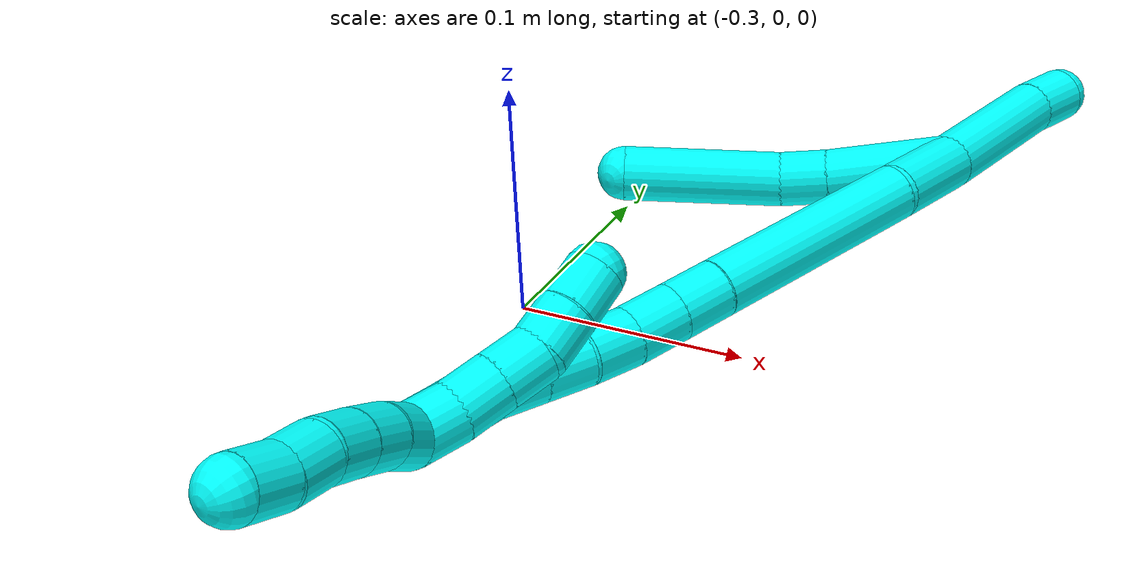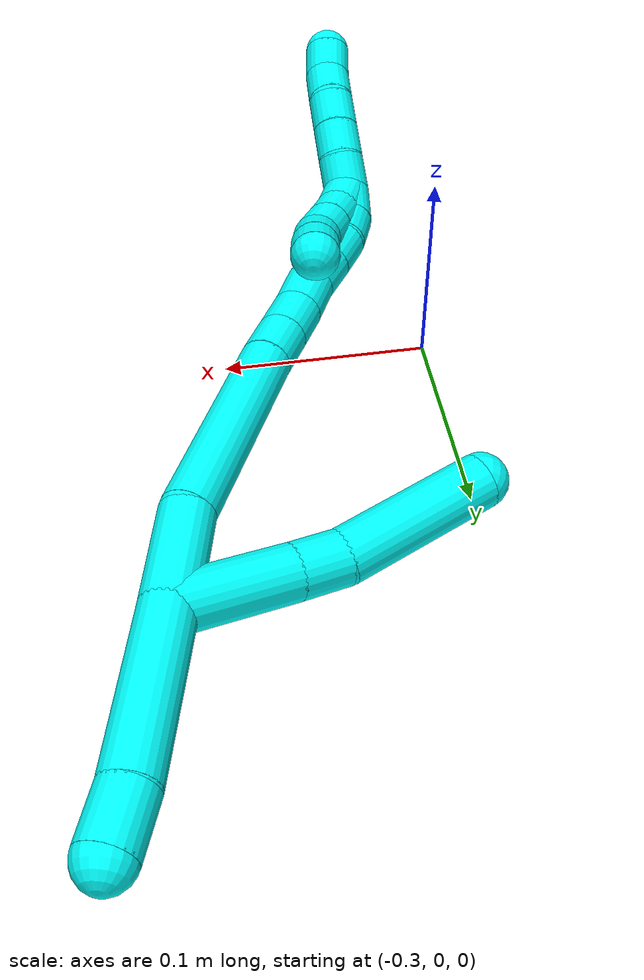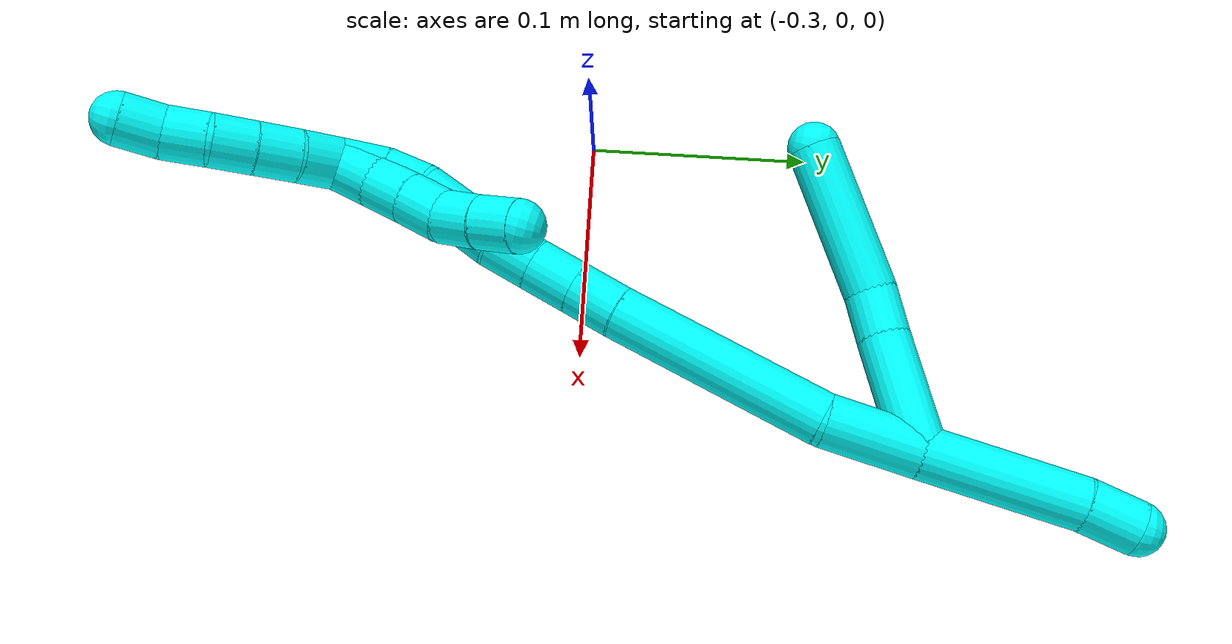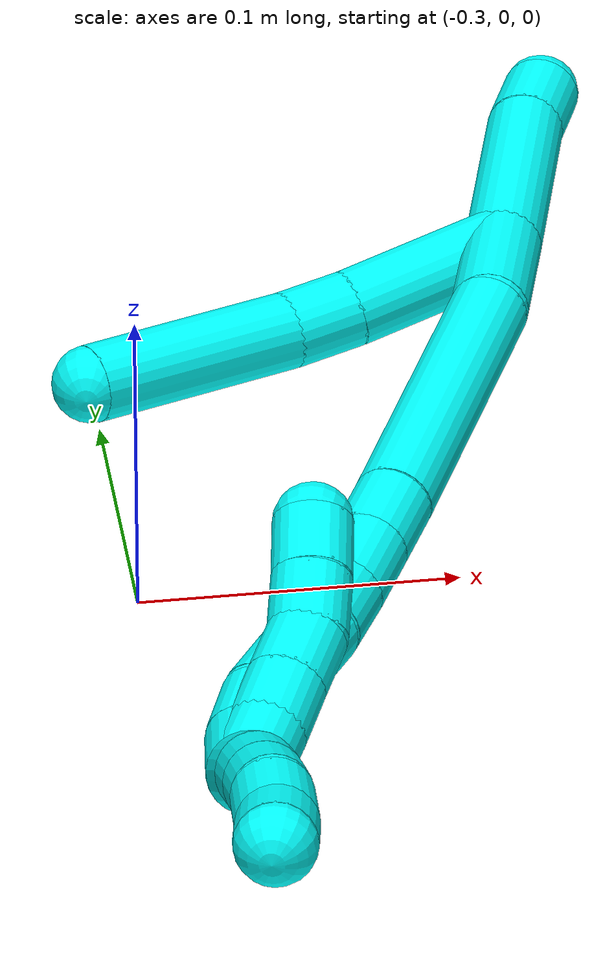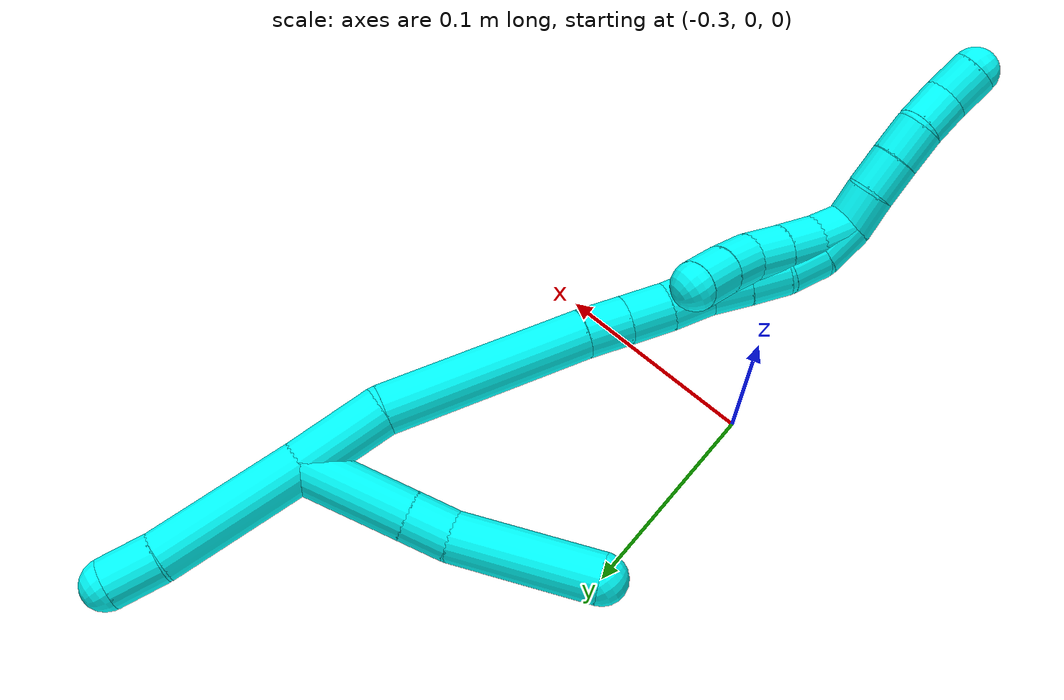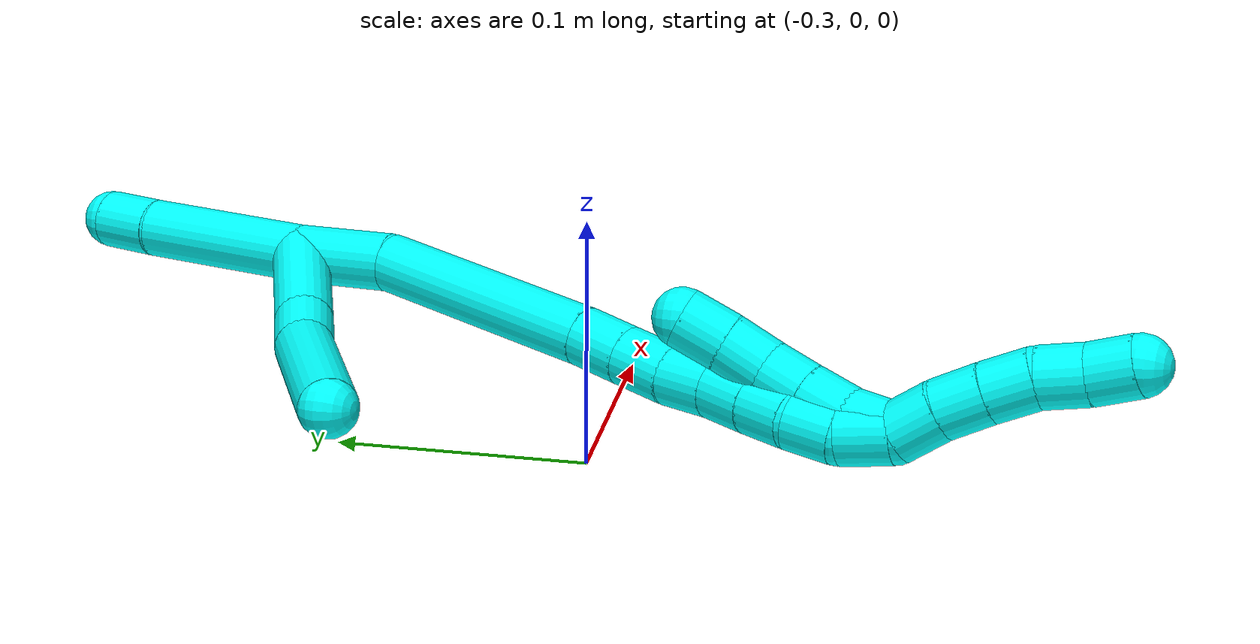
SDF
<sdf version="1.7">
 <world name="default">
  <model name="3">
   <static>0</static>
   <link name="3">
    <collision name="collision-cylinder-e_1_2_8">
     <pose>-0.016258 -0.017813 0.013162 0.934454 -0.633235 -0.327615</pose>
     <geometry><cylinder><radius>0.0125</radius><length>0.05495</length></cylinder></geometry>
     <surface>
      <friction><ode><mu>1.16</mu><mu2>1.16</mu2><slip1>0</slip1><slip2>0</slip2></ode></friction>
      <contact><ode><kp>1e+06</kp><kd>1</kd><max_vel>0</max_vel><min_depth>0.001</min_depth></ode></contact>
     </surface>
    </collision>
    <visual name="visual-cylinder-e_1_2_8">
     <pose>-0.016258 -0.017813 0.013162 0.934454 -0.633235 -0.327615</pose>
     <geometry><cylinder><radius>0.0125</radius><length>0.05495</length></cylinder></geometry>
     <material><ambient>0.003922 1 0.996078 1</ambient></material>
    </visual>
    <collision name="collision-cylinder-e_2_8_9">
     <pose>-0.039718 -0.042451 0.031685 0.904892 -0.692599 -0.347259</pose>
     <geometry><cylinder><radius>0.0125</radius><length>0.022556</length></cylinder></geometry>
     <surface>
      <friction><ode><mu>1.16</mu><mu2>1.16</mu2><slip1>0</slip1><slip2>0</slip2></ode></friction>
      <contact><ode><kp>1e+06</kp><kd>1</kd><max_vel>0</max_vel><min_depth>0.001</min_depth></ode></contact>
     </surface>
    </collision>
    <visual name="visual-cylinder-e_2_8_9">
     <pose>-0.039718 -0.042451 0.031685 0.904892 -0.692599 -0.347259</pose>
     <geometry><cylinder><radius>0.0125</radius><length>0.022556</length></cylinder></geometry>
     <material><ambient>0.003922 1 0.996078 1</ambient></material>
    </visual>
    <collision name="collision-cylinder-e_3_9_6">
     <pose>-0.071352 -0.065078 0.058662 0.631265 -0.739664 -0.251847</pose>
     <geometry><cylinder><radius>0.0125</radius><length>0.072495</length></cylinder></geometry>
     <surface>
      <friction><ode><mu>1.16</mu><mu2>1.16</mu2><slip1>0</slip1><slip2>0</slip2></ode></friction>
      <contact><ode><kp>1e+06</kp><kd>1</kd><max_vel>0</max_vel><min_depth>0.001</min_depth></ode></contact>
     </surface>
    </collision>
    <visual name="visual-cylinder-e_3_9_6">
     <pose>-0.071352 -0.065078 0.058662 0.631265 -0.739664 -0.251847</pose>
     <geometry><cylinder><radius>0.0125</radius><length>0.072495</length></cylinder></geometry>
     <material><ambient>0.003922 1 0.996078 1</ambient></material>
    </visual>
    <collision name="collision-cylinder-e_1_2_10">
     <pose>-0.00048 0.002642 -0.037348 -3.07097 -0.012822 0.359074</pose>
     <geometry><cylinder><radius>0.0125</radius><length>0.074889</length></cylinder></geometry>
     <surface>
      <friction><ode><mu>1.16</mu><mu2>1.16</mu2><slip1>0</slip1><slip2>0</slip2></ode></friction>
      <contact><ode><kp>1e+06</kp><kd>1</kd><max_vel>0</max_vel><min_depth>0.001</min_depth></ode></contact>
     </surface>
    </collision>
    <visual name="visual-cylinder-e_1_2_10">
     <pose>-0.00048 0.002642 -0.037348 -3.07097 -0.012822 0.359074</pose>
     <geometry><cylinder><radius>0.0125</radius><length>0.074889</length></cylinder></geometry>
     <material><ambient>0.003922 1 0.996078 1</ambient></material>
    </visual>
    <collision name="collision-cylinder-e_2_10_5">
     <pose>0.000226 0.006688 -0.087116 -3.02905 0.094597 -1.39769</pose>
     <geometry><cylinder><radius>0.0125</radius><length>0.025111</length></cylinder></geometry>
     <surface>
      <friction><ode><mu>1.16</mu><mu2>1.16</mu2><slip1>0</slip1><slip2>0</slip2></ode></friction>
      <contact><ode><kp>1e+06</kp><kd>1</kd><max_vel>0</max_vel><min_depth>0.001</min_depth></ode></contact>
     </surface>
    </collision>
    <visual name="visual-cylinder-e_2_10_5">
     <pose>0.000226 0.006688 -0.087116 -3.02905 0.094597 -1.39769</pose>
     <geometry><cylinder><radius>0.0125</radius><length>0.025111</length></cylinder></geometry>
     <material><ambient>0.003922 1 0.996078 1</ambient></material>
    </visual>
    <collision name="collision-cylinder-e_1_2_11">
     <pose>-0.000521 -0.000283 0.022536 0.012559 -0.02311 -0.000145</pose>
     <geometry><cylinder><radius>0.0125</radius><length>0.045087</length></cylinder></geometry>
     <surface>
      <friction><ode><mu>1.16</mu><mu2>1.16</mu2><slip1>0</slip1><slip2>0</slip2></ode></friction>
      <contact><ode><kp>1e+06</kp><kd>1</kd><max_vel>0</max_vel><min_depth>0.001</min_depth></ode></contact>
     </surface>
    </collision>
    <visual name="visual-cylinder-e_1_2_11">
     <pose>-0.000521 -0.000283 0.022536 0.012559 -0.02311 -0.000145</pose>
     <geometry><cylinder><radius>0.0125</radius><length>0.045087</length></cylinder></geometry>
     <material><ambient>0.003922 1 0.996078 1</ambient></material>
    </visual>
    <collision name="collision-cylinder-e_2_11_12">
     <pose>-0.006054 -0.013292 0.095224 0.248511 -0.096568 -0.012071</pose>
     <geometry><cylinder><radius>0.0125</radius><length>0.103967</length></cylinder></geometry>
     <surface>
      <friction><ode><mu>1.16</mu><mu2>1.16</mu2><slip1>0</slip1><slip2>0</slip2></ode></friction>
      <contact><ode><kp>1e+06</kp><kd>1</kd><max_vel>0</max_vel><min_depth>0.001</min_depth></ode></contact>
     </surface>
    </collision>
    <visual name="visual-cylinder-e_2_11_12">
     <pose>-0.006054 -0.013292 0.095224 0.248511 -0.096568 -0.012071</pose>
     <geometry><cylinder><radius>0.0125</radius><length>0.103967</length></cylinder></geometry>
     <material><ambient>0.003922 1 0.996078 1</ambient></material>
    </visual>
    <collision name="collision-cylinder-e_3_12_13">
     <pose>-0.012304 -0.029383 0.156142 0.302848 -0.109287 -0.016693</pose>
     <geometry><cylinder><radius>0.0125</radius><length>0.022695</length></cylinder></geometry>
     <surface>
      <friction><ode><mu>1.16</mu><mu2>1.16</mu2><slip1>0</slip1><slip2>0</slip2></ode></friction>
      <contact><ode><kp>1e+06</kp><kd>1</kd><max_vel>0</max_vel><min_depth>0.001</min_depth></ode></contact>
     </surface>
    </collision>
    <visual name="visual-cylinder-e_3_12_13">
     <pose>-0.012304 -0.029383 0.156142 0.302848 -0.109287 -0.016693</pose>
     <geometry><cylinder><radius>0.0125</radius><length>0.022695</length></cylinder></geometry>
     <material><ambient>0.003922 1 0.996078 1</ambient></material>
    </visual>
    <collision name="collision-cylinder-e_4_13_14">
     <pose>-0.014821 -0.036054 0.177752 0.296006 -0.112399 -0.016775</pose>
     <geometry><cylinder><radius>0.0125</radius><length>0.022816</length></cylinder></geometry>
     <surface>
      <friction><ode><mu>1.16</mu><mu2>1.16</mu2><slip1>0</slip1><slip2>0</slip2></ode></friction>
      <contact><ode><kp>1e+06</kp><kd>1</kd><max_vel>0</max_vel><min_depth>0.001</min_depth></ode></contact>
     </surface>
    </collision>
    <visual name="visual-cylinder-e_4_13_14">
     <pose>-0.014821 -0.036054 0.177752 0.296006 -0.112399 -0.016775</pose>
     <geometry><cylinder><radius>0.0125</radius><length>0.022816</length></cylinder></geometry>
     <material><ambient>0.003922 1 0.996078 1</ambient></material>
    </visual>
    <collision name="collision-cylinder-e_5_14_15">
     <pose>-0.017895 -0.041332 0.199137 0.184887 -0.165789 -0.015405</pose>
     <geometry><cylinder><radius>0.0125</radius><length>0.021748</length></cylinder></geometry>
     <surface>
      <friction><ode><mu>1.16</mu><mu2>1.16</mu2><slip1>0</slip1><slip2>0</slip2></ode></friction>
      <contact><ode><kp>1e+06</kp><kd>1</kd><max_vel>0</max_vel><min_depth>0.001</min_depth></ode></contact>
     </surface>
    </collision>
    <visual name="visual-cylinder-e_5_14_15">
     <pose>-0.017895 -0.041332 0.199137 0.184887 -0.165789 -0.015405</pose>
     <geometry><cylinder><radius>0.0125</radius><length>0.021748</length></cylinder></geometry>
     <material><ambient>0.003922 1 0.996078 1</ambient></material>
    </visual>
    <collision name="collision-cylinder-e_6_15_16">
     <pose>-0.022301 -0.046147 0.219335 0.286324 -0.253832 -0.036783</pose>
     <geometry><cylinder><radius>0.0125</radius><length>0.020796</length></cylinder></geometry>
     <surface>
      <friction><ode><mu>1.16</mu><mu2>1.16</mu2><slip1>0</slip1><slip2>0</slip2></ode></friction>
      <contact><ode><kp>1e+06</kp><kd>1</kd><max_vel>0</max_vel><min_depth>0.001</min_depth></ode></contact>
     </surface>
    </collision>
    <visual name="visual-cylinder-e_6_15_16">
     <pose>-0.022301 -0.046147 0.219335 0.286324 -0.253832 -0.036783</pose>
     <geometry><cylinder><radius>0.0125</radius><length>0.020796</length></cylinder></geometry>
     <material><ambient>0.003922 1 0.996078 1</ambient></material>
    </visual>
    <collision name="collision-cylinder-e_7_16_17">
     <pose>-0.027417 -0.051546 0.238623 0.259423 -0.246254 -0.032283</pose>
     <geometry><cylinder><radius>0.0125</radius><length>0.020553</length></cylinder></geometry>
     <surface>
      <friction><ode><mu>1.16</mu><mu2>1.16</mu2><slip1>0</slip1><slip2>0</slip2></ode></friction>
      <contact><ode><kp>1e+06</kp><kd>1</kd><max_vel>0</max_vel><min_depth>0.001</min_depth></ode></contact>
     </surface>
    </collision>
    <visual name="visual-cylinder-e_7_16_17">
     <pose>-0.027417 -0.051546 0.238623 0.259423 -0.246254 -0.032283</pose>
     <geometry><cylinder><radius>0.0125</radius><length>0.020553</length></cylinder></geometry>
     <material><ambient>0.003922 1 0.996078 1</ambient></material>
    </visual>
    <collision name="collision-cylinder-e_8_17_18">
     <pose>-0.030261 -0.056102 0.258254 0.197333 -0.033237 -0.00329</pose>
     <geometry><cylinder><radius>0.0125</radius><length>0.020405</length></cylinder></geometry>
     <surface>
      <friction><ode><mu>1.16</mu><mu2>1.16</mu2><slip1>0</slip1><slip2>0</slip2></ode></friction>
      <contact><ode><kp>1e+06</kp><kd>1</kd><max_vel>0</max_vel><min_depth>0.001</min_depth></ode></contact>
     </surface>
    </collision>
    <visual name="visual-cylinder-e_8_17_18">
     <pose>-0.030261 -0.056102 0.258254 0.197333 -0.033237 -0.00329</pose>
     <geometry><cylinder><radius>0.0125</radius><length>0.020405</length></cylinder></geometry>
     <material><ambient>0.003922 1 0.996078 1</ambient></material>
    </visual>
    <collision name="collision-cylinder-e_9_18_1">
     <pose>-0.030132 -0.056651 0.279113 -0.132704 0.042762 -0.002842</pose>
     <geometry><cylinder><radius>0.0125</radius><length>0.021932</length></cylinder></geometry>
     <surface>
      <friction><ode><mu>1.16</mu><mu2>1.16</mu2><slip1>0</slip1><slip2>0</slip2></ode></friction>
      <contact><ode><kp>1e+06</kp><kd>1</kd><max_vel>0</max_vel><min_depth>0.001</min_depth></ode></contact>
     </surface>
    </collision>
    <visual name="visual-cylinder-e_9_18_1">
     <pose>-0.030132 -0.056651 0.279113 -0.132704 0.042762 -0.002842</pose>
     <geometry><cylinder><radius>0.0125</radius><length>0.021932</length></cylinder></geometry>
     <material><ambient>0.003922 1 0.996078 1</ambient></material>
    </visual>
    <collision name="collision-cylinder-e_1_1_19">
     <pose>-0.030622 -0.04986 0.298372 -0.566454 -0.096064 0.027979</pose>
     <geometry><cylinder><radius>0.0125</radius><length>0.02</length></cylinder></geometry>
     <surface>
      <friction><ode><mu>1.16</mu><mu2>1.16</mu2><slip1>0</slip1><slip2>0</slip2></ode></friction>
      <contact><ode><kp>1e+06</kp><kd>1</kd><max_vel>0</max_vel><min_depth>0.001</min_depth></ode></contact>
     </surface>
    </collision>
    <visual name="visual-cylinder-e_1_1_19">
     <pose>-0.030622 -0.04986 0.298372 -0.566454 -0.096064 0.027979</pose>
     <geometry><cylinder><radius>0.0125</radius><length>0.02</length></cylinder></geometry>
     <material><ambient>0.003922 1 0.996078 1</ambient></material>
    </visual>
    <collision name="collision-cylinder-e_2_19_20">
     <pose>-0.031976 -0.040284 0.315822 -0.437599 -0.039453 0.008774</pose>
     <geometry><cylinder><radius>0.0125</radius><length>0.02</length></cylinder></geometry>
     <surface>
      <friction><ode><mu>1.16</mu><mu2>1.16</mu2><slip1>0</slip1><slip2>0</slip2></ode></friction>
      <contact><ode><kp>1e+06</kp><kd>1</kd><max_vel>0</max_vel><min_depth>0.001</min_depth></ode></contact>
     </surface>
    </collision>
    <visual name="visual-cylinder-e_2_19_20">
     <pose>-0.031976 -0.040284 0.315822 -0.437599 -0.039453 0.008774</pose>
     <geometry><cylinder><radius>0.0125</radius><length>0.02</length></cylinder></geometry>
     <material><ambient>0.003922 1 0.996078 1</ambient></material>
    </visual>
    <collision name="collision-cylinder-e_3_20_21">
     <pose>-0.032579 -0.032191 0.334096 -0.396176 -0.020932 0.004202</pose>
     <geometry><cylinder><radius>0.0125</radius><length>0.02</length></cylinder></geometry>
     <surface>
      <friction><ode><mu>1.16</mu><mu2>1.16</mu2><slip1>0</slip1><slip2>0</slip2></ode></friction>
      <contact><ode><kp>1e+06</kp><kd>1</kd><max_vel>0</max_vel><min_depth>0.001</min_depth></ode></contact>
     </surface>
    </collision>
    <visual name="visual-cylinder-e_3_20_21">
     <pose>-0.032579 -0.032191 0.334096 -0.396176 -0.020932 0.004202</pose>
     <geometry><cylinder><radius>0.0125</radius><length>0.02</length></cylinder></geometry>
     <material><ambient>0.003922 1 0.996078 1</ambient></material>
    </visual>
    <collision name="collision-cylinder-e_4_21_22">
     <pose>-0.032039 -0.026545 0.353129 -0.180299 0.075009 -0.006784</pose>
     <geometry><cylinder><radius>0.0125</radius><length>0.02</length></cylinder></geometry>
     <surface>
      <friction><ode><mu>1.16</mu><mu2>1.16</mu2><slip1>0</slip1><slip2>0</slip2></ode></friction>
      <contact><ode><kp>1e+06</kp><kd>1</kd><max_vel>0</max_vel><min_depth>0.001</min_depth></ode></contact>
     </surface>
    </collision>
    <visual name="visual-cylinder-e_4_21_22">
     <pose>-0.032039 -0.026545 0.353129 -0.180299 0.075009 -0.006784</pose>
     <geometry><cylinder><radius>0.0125</radius><length>0.02</length></cylinder></geometry>
     <material><ambient>0.003922 1 0.996078 1</ambient></material>
    </visual>
    <collision name="collision-cylinder-e_5_22_4">
     <pose>-0.03221 -0.022249 0.372576 -0.254566 -0.092095 0.011794</pose>
     <geometry><cylinder><radius>0.0125</radius><length>0.02</length></cylinder></geometry>
     <surface>
      <friction><ode><mu>1.16</mu><mu2>1.16</mu2><slip1>0</slip1><slip2>0</slip2></ode></friction>
      <contact><ode><kp>1e+06</kp><kd>1</kd><max_vel>0</max_vel><min_depth>0.001</min_depth></ode></contact>
     </surface>
    </collision>
    <visual name="visual-cylinder-e_5_22_4">
     <pose>-0.03221 -0.022249 0.372576 -0.254566 -0.092095 0.011794</pose>
     <geometry><cylinder><radius>0.0125</radius><length>0.02</length></cylinder></geometry>
     <material><ambient>0.003922 1 0.996078 1</ambient></material>
    </visual>
    <collision name="collision-cylinder-e_1_1_23">
     <pose>-0.028862 -0.053046 0.28024 -2.92366 0.080137 -0.702523</pose>
     <geometry><cylinder><radius>0.0125</radius><length>0.02</length></cylinder></geometry>
     <surface>
      <friction><ode><mu>1.16</mu><mu2>1.16</mu2><slip1>0</slip1><slip2>0</slip2></ode></friction>
      <contact><ode><kp>1e+06</kp><kd>1</kd><max_vel>0</max_vel><min_depth>0.001</min_depth></ode></contact>
     </surface>
    </collision>
    <visual name="visual-cylinder-e_1_1_23">
     <pose>-0.028862 -0.053046 0.28024 -2.92366 0.080137 -0.702523</pose>
     <geometry><cylinder><radius>0.0125</radius><length>0.02</length></cylinder></geometry>
     <material><ambient>0.003922 1 0.996078 1</ambient></material>
    </visual>
    <collision name="collision-cylinder-e_2_23_24">
     <pose>-0.027983 -0.047072 0.261267 -2.74967 0.00791 -0.03984</pose>
     <geometry><cylinder><radius>0.0125</radius><length>0.02</length></cylinder></geometry>
     <surface>
      <friction><ode><mu>1.16</mu><mu2>1.16</mu2><slip1>0</slip1><slip2>0</slip2></ode></friction>
      <contact><ode><kp>1e+06</kp><kd>1</kd><max_vel>0</max_vel><min_depth>0.001</min_depth></ode></contact>
     </surface>
    </collision>
    <visual name="visual-cylinder-e_2_23_24">
     <pose>-0.027983 -0.047072 0.261267 -2.74967 0.00791 -0.03984</pose>
     <geometry><cylinder><radius>0.0125</radius><length>0.02</length></cylinder></geometry>
     <material><ambient>0.003922 1 0.996078 1</ambient></material>
    </visual>
    <collision name="collision-cylinder-e_3_24_25">
     <pose>-0.027719 -0.039229 0.242872 -2.72748 0.018451 -0.087779</pose>
     <geometry><cylinder><radius>0.0125</radius><length>0.02</length></cylinder></geometry>
     <surface>
      <friction><ode><mu>1.16</mu><mu2>1.16</mu2><slip1>0</slip1><slip2>0</slip2></ode></friction>
      <contact><ode><kp>1e+06</kp><kd>1</kd><max_vel>0</max_vel><min_depth>0.001</min_depth></ode></contact>
     </surface>
    </collision>
    <visual name="visual-cylinder-e_3_24_25">
     <pose>-0.027719 -0.039229 0.242872 -2.72748 0.018451 -0.087779</pose>
     <geometry><cylinder><radius>0.0125</radius><length>0.02</length></cylinder></geometry>
     <material><ambient>0.003922 1 0.996078 1</ambient></material>
    </visual>
    <collision name="collision-cylinder-e_4_25_26">
     <pose>-0.03041 -0.031103 0.225065 -2.69887 -0.291704 1.15657</pose>
     <geometry><cylinder><radius>0.0125</radius><length>0.02</length></cylinder></geometry>
     <surface>
      <friction><ode><mu>1.16</mu><mu2>1.16</mu2><slip1>0</slip1><slip2>0</slip2></ode></friction>
      <contact><ode><kp>1e+06</kp><kd>1</kd><max_vel>0</max_vel><min_depth>0.001</min_depth></ode></contact>
     </surface>
    </collision>
    <visual name="visual-cylinder-e_4_25_26">
     <pose>-0.03041 -0.031103 0.225065 -2.69887 -0.291704 1.15657</pose>
     <geometry><cylinder><radius>0.0125</radius><length>0.02</length></cylinder></geometry>
     <material><ambient>0.003922 1 0.996078 1</ambient></material>
    </visual>
    <collision name="collision-cylinder-e_5_26_3">
     <pose>-0.036388 -0.023451 0.207591 -2.75898 -0.315407 1.37495</pose>
     <geometry><cylinder><radius>0.0125</radius><length>0.02</length></cylinder></geometry>
     <surface>
      <friction><ode><mu>1.16</mu><mu2>1.16</mu2><slip1>0</slip1><slip2>0</slip2></ode></friction>
      <contact><ode><kp>1e+06</kp><kd>1</kd><max_vel>0</max_vel><min_depth>0.001</min_depth></ode></contact>
     </surface>
    </collision>
    <visual name="visual-cylinder-e_5_26_3">
     <pose>-0.036388 -0.023451 0.207591 -2.75898 -0.315407 1.37495</pose>
     <geometry><cylinder><radius>0.0125</radius><length>0.02</length></cylinder></geometry>
     <material><ambient>0.003922 1 0.996078 1</ambient></material>
    </visual>
    <collision name="collision-sphere-3">
     <pose>-0.03949 -0.019901 0.198772 0 -0 0</pose>
     <geometry><sphere><radius>0.0125</radius></sphere></geometry>
     <surface>
      <friction><ode><mu>1.16</mu><mu2>1.16</mu2><slip1>0</slip1><slip2>0</slip2></ode></friction>
      <contact><ode><kp>1e+06</kp><kd>1</kd><max_vel>0</max_vel><min_depth>0.001</min_depth></ode></contact>
     </surface>
    </collision>
    <visual name="visual-sphere-3">
     <pose>-0.03949 -0.019901 0.198772 0 -0 0</pose>
     <geometry><sphere><radius>0.0125</radius></sphere></geometry>
     <material><ambient>0.003922 1 0.996078 1</ambient></material>
    </visual>
    <collision name="collision-sphere-26">
     <pose>-0.033286 -0.027 0.216411 0 -0 0</pose>
     <geometry><sphere><radius>0.0125</radius></sphere></geometry>
     <surface>
      <friction><ode><mu>1.16</mu><mu2>1.16</mu2><slip1>0</slip1><slip2>0</slip2></ode></friction>
      <contact><ode><kp>1e+06</kp><kd>1</kd><max_vel>0</max_vel><min_depth>0.001</min_depth></ode></contact>
     </surface>
    </collision>
    <visual name="visual-sphere-26">
     <pose>-0.033286 -0.027 0.216411 0 -0 0</pose>
     <geometry><sphere><radius>0.0125</radius></sphere></geometry>
     <material><ambient>0.003922 1 0.996078 1</ambient></material>
    </visual>
    <collision name="collision-sphere-25">
     <pose>-0.027535 -0.035206 0.233719 0 -0 0</pose>
     <geometry><sphere><radius>0.0125</radius></sphere></geometry>
     <surface>
      <friction><ode><mu>1.16</mu><mu2>1.16</mu2><slip1>0</slip1><slip2>0</slip2></ode></friction>
      <contact><ode><kp>1e+06</kp><kd>1</kd><max_vel>0</max_vel><min_depth>0.001</min_depth></ode></contact>
     </surface>
    </collision>
    <visual name="visual-sphere-25">
     <pose>-0.027535 -0.035206 0.233719 0 -0 0</pose>
     <geometry><sphere><radius>0.0125</radius></sphere></geometry>
     <material><ambient>0.003922 1 0.996078 1</ambient></material>
    </visual>
    <collision name="collision-sphere-24">
     <pose>-0.027904 -0.043252 0.252025 0 -0 0</pose>
     <geometry><sphere><radius>0.0125</radius></sphere></geometry>
     <surface>
      <friction><ode><mu>1.16</mu><mu2>1.16</mu2><slip1>0</slip1><slip2>0</slip2></ode></friction>
      <contact><ode><kp>1e+06</kp><kd>1</kd><max_vel>0</max_vel><min_depth>0.001</min_depth></ode></contact>
     </surface>
    </collision>
    <visual name="visual-sphere-24">
     <pose>-0.027904 -0.043252 0.252025 0 -0 0</pose>
     <geometry><sphere><radius>0.0125</radius></sphere></geometry>
     <material><ambient>0.003922 1 0.996078 1</ambient></material>
    </visual>
    <collision name="collision-sphere-23">
     <pose>-0.028062 -0.050891 0.270508 0 -0 0</pose>
     <geometry><sphere><radius>0.0125</radius></sphere></geometry>
     <surface>
      <friction><ode><mu>1.16</mu><mu2>1.16</mu2><slip1>0</slip1><slip2>0</slip2></ode></friction>
      <contact><ode><kp>1e+06</kp><kd>1</kd><max_vel>0</max_vel><min_depth>0.001</min_depth></ode></contact>
     </surface>
    </collision>
    <visual name="visual-sphere-23">
     <pose>-0.028062 -0.050891 0.270508 0 -0 0</pose>
     <geometry><sphere><radius>0.0125</radius></sphere></geometry>
     <material><ambient>0.003922 1 0.996078 1</ambient></material>
    </visual>
    <collision name="collision-sphere-4">
     <pose>-0.033129 -0.019742 0.382213 0 -0 0</pose>
     <geometry><sphere><radius>0.0125</radius></sphere></geometry>
     <surface>
      <friction><ode><mu>1.16</mu><mu2>1.16</mu2><slip1>0</slip1><slip2>0</slip2></ode></friction>
      <contact><ode><kp>1e+06</kp><kd>1</kd><max_vel>0</max_vel><min_depth>0.001</min_depth></ode></contact>
     </surface>
    </collision>
    <visual name="visual-sphere-4">
     <pose>-0.033129 -0.019742 0.382213 0 -0 0</pose>
     <geometry><sphere><radius>0.0125</radius></sphere></geometry>
     <material><ambient>0.003922 1 0.996078 1</ambient></material>
    </visual>
    <collision name="collision-sphere-22">
     <pose>-0.03129 -0.024757 0.362939 0 -0 0</pose>
     <geometry><sphere><radius>0.0125</radius></sphere></geometry>
     <surface>
      <friction><ode><mu>1.16</mu><mu2>1.16</mu2><slip1>0</slip1><slip2>0</slip2></ode></friction>
      <contact><ode><kp>1e+06</kp><kd>1</kd><max_vel>0</max_vel><min_depth>0.001</min_depth></ode></contact>
     </surface>
    </collision>
    <visual name="visual-sphere-22">
     <pose>-0.03129 -0.024757 0.362939 0 -0 0</pose>
     <geometry><sphere><radius>0.0125</radius></sphere></geometry>
     <material><ambient>0.003922 1 0.996078 1</ambient></material>
    </visual>
    <collision name="collision-sphere-21">
     <pose>-0.032789 -0.028333 0.343319 0 -0 0</pose>
     <geometry><sphere><radius>0.0125</radius></sphere></geometry>
     <surface>
      <friction><ode><mu>1.16</mu><mu2>1.16</mu2><slip1>0</slip1><slip2>0</slip2></ode></friction>
      <contact><ode><kp>1e+06</kp><kd>1</kd><max_vel>0</max_vel><min_depth>0.001</min_depth></ode></contact>
     </surface>
    </collision>
    <visual name="visual-sphere-21">
     <pose>-0.032789 -0.028333 0.343319 0 -0 0</pose>
     <geometry><sphere><radius>0.0125</radius></sphere></geometry>
     <material><ambient>0.003922 1 0.996078 1</ambient></material>
    </visual>
    <collision name="collision-sphere-20">
     <pose>-0.03237 -0.036049 0.324872 0 -0 0</pose>
     <geometry><sphere><radius>0.0125</radius></sphere></geometry>
     <surface>
      <friction><ode><mu>1.16</mu><mu2>1.16</mu2><slip1>0</slip1><slip2>0</slip2></ode></friction>
      <contact><ode><kp>1e+06</kp><kd>1</kd><max_vel>0</max_vel><min_depth>0.001</min_depth></ode></contact>
     </surface>
    </collision>
    <visual name="visual-sphere-20">
     <pose>-0.03237 -0.036049 0.324872 0 -0 0</pose>
     <geometry><sphere><radius>0.0125</radius></sphere></geometry>
     <material><ambient>0.003922 1 0.996078 1</ambient></material>
    </visual>
    <collision name="collision-sphere-5">
     <pose>0.001412 0.008091 -0.099537 0 -0 0</pose>
     <geometry><sphere><radius>0.0125</radius></sphere></geometry>
     <surface>
      <friction><ode><mu>1.16</mu><mu2>1.16</mu2><slip1>0</slip1><slip2>0</slip2></ode></friction>
      <contact><ode><kp>1e+06</kp><kd>1</kd><max_vel>0</max_vel><min_depth>0.001</min_depth></ode></contact>
     </surface>
    </collision>
    <visual name="visual-sphere-5">
     <pose>0.001412 0.008091 -0.099537 0 -0 0</pose>
     <geometry><sphere><radius>0.0125</radius></sphere></geometry>
     <material><ambient>0.003922 1 0.996078 1</ambient></material>
    </visual>
    <collision name="collision-sphere-10">
     <pose>-0.00096 0.005284 -0.074696 0 -0 0</pose>
     <geometry><sphere><radius>0.0125</radius></sphere></geometry>
     <surface>
      <friction><ode><mu>1.16</mu><mu2>1.16</mu2><slip1>0</slip1><slip2>0</slip2></ode></friction>
      <contact><ode><kp>1e+06</kp><kd>1</kd><max_vel>0</max_vel><min_depth>0.001</min_depth></ode></contact>
     </surface>
    </collision>
    <visual name="visual-sphere-10">
     <pose>-0.00096 0.005284 -0.074696 0 -0 0</pose>
     <geometry><sphere><radius>0.0125</radius></sphere></geometry>
     <material><ambient>0.003922 1 0.996078 1</ambient></material>
    </visual>
    <collision name="collision-sphere-6">
     <pose>-0.095784 -0.08088 0.080278 0 -0 0</pose>
     <geometry><sphere><radius>0.0125</radius></sphere></geometry>
     <surface>
      <friction><ode><mu>1.16</mu><mu2>1.16</mu2><slip1>0</slip1><slip2>0</slip2></ode></friction>
      <contact><ode><kp>1e+06</kp><kd>1</kd><max_vel>0</max_vel><min_depth>0.001</min_depth></ode></contact>
     </surface>
    </collision>
    <visual name="visual-sphere-6">
     <pose>-0.095784 -0.08088 0.080278 0 -0 0</pose>
     <geometry><sphere><radius>0.0125</radius></sphere></geometry>
     <material><ambient>0.003922 1 0.996078 1</ambient></material>
    </visual>
    <collision name="collision-sphere-9">
     <pose>-0.046919 -0.049276 0.037047 0 -0 0</pose>
     <geometry><sphere><radius>0.0125</radius></sphere></geometry>
     <surface>
      <friction><ode><mu>1.16</mu><mu2>1.16</mu2><slip1>0</slip1><slip2>0</slip2></ode></friction>
      <contact><ode><kp>1e+06</kp><kd>1</kd><max_vel>0</max_vel><min_depth>0.001</min_depth></ode></contact>
     </surface>
    </collision>
    <visual name="visual-sphere-9">
     <pose>-0.046919 -0.049276 0.037047 0 -0 0</pose>
     <geometry><sphere><radius>0.0125</radius></sphere></geometry>
     <material><ambient>0.003922 1 0.996078 1</ambient></material>
    </visual>
    <collision name="collision-sphere-2">
     <geometry><sphere><radius>0.0125</radius></sphere></geometry>
     <surface>
      <friction><ode><mu>1.16</mu><mu2>1.16</mu2><slip1>0</slip1><slip2>0</slip2></ode></friction>
      <contact><ode><kp>1e+06</kp><kd>1</kd><max_vel>0</max_vel><min_depth>0.001</min_depth></ode></contact>
     </surface>
    </collision>
    <visual name="visual-sphere-2">
     <geometry><sphere><radius>0.0125</radius></sphere></geometry>
     <material><ambient>0.003922 1 0.996078 1</ambient></material>
    </visual>
    <collision name="collision-sphere-19">
     <pose>-0.031581 -0.044518 0.306771 0 -0 0</pose>
     <geometry><sphere><radius>0.0125</radius></sphere></geometry>
     <surface>
      <friction><ode><mu>1.16</mu><mu2>1.16</mu2><slip1>0</slip1><slip2>0</slip2></ode></friction>
      <contact><ode><kp>1e+06</kp><kd>1</kd><max_vel>0</max_vel><min_depth>0.001</min_depth></ode></contact>
     </surface>
    </collision>
    <visual name="visual-sphere-19">
     <pose>-0.031581 -0.044518 0.306771 0 -0 0</pose>
     <geometry><sphere><radius>0.0125</radius></sphere></geometry>
     <material><ambient>0.003922 1 0.996078 1</ambient></material>
    </visual>
    <collision name="collision-sphere-8">
     <pose>-0.032517 -0.035626 0.026323 0 -0 0</pose>
     <geometry><sphere><radius>0.0125</radius></sphere></geometry>
     <surface>
      <friction><ode><mu>1.16</mu><mu2>1.16</mu2><slip1>0</slip1><slip2>0</slip2></ode></friction>
      <contact><ode><kp>1e+06</kp><kd>1</kd><max_vel>0</max_vel><min_depth>0.001</min_depth></ode></contact>
     </surface>
    </collision>
    <visual name="visual-sphere-8">
     <pose>-0.032517 -0.035626 0.026323 0 -0 0</pose>
     <geometry><sphere><radius>0.0125</radius></sphere></geometry>
     <material><ambient>0.003922 1 0.996078 1</ambient></material>
    </visual>
    <collision name="collision-sphere-11">
     <pose>-0.001042 -0.000566 0.045072 0 -0 0</pose>
     <geometry><sphere><radius>0.0125</radius></sphere></geometry>
     <surface>
      <friction><ode><mu>1.16</mu><mu2>1.16</mu2><slip1>0</slip1><slip2>0</slip2></ode></friction>
      <contact><ode><kp>1e+06</kp><kd>1</kd><max_vel>0</max_vel><min_depth>0.001</min_depth></ode></contact>
     </surface>
    </collision>
    <visual name="visual-sphere-11">
     <pose>-0.001042 -0.000566 0.045072 0 -0 0</pose>
     <geometry><sphere><radius>0.0125</radius></sphere></geometry>
     <material><ambient>0.003922 1 0.996078 1</ambient></material>
    </visual>
    <collision name="collision-sphere-12">
     <pose>-0.011066 -0.026019 0.145376 0 -0 0</pose>
     <geometry><sphere><radius>0.0125</radius></sphere></geometry>
     <surface>
      <friction><ode><mu>1.16</mu><mu2>1.16</mu2><slip1>0</slip1><slip2>0</slip2></ode></friction>
      <contact><ode><kp>1e+06</kp><kd>1</kd><max_vel>0</max_vel><min_depth>0.001</min_depth></ode></contact>
     </surface>
    </collision>
    <visual name="visual-sphere-12">
     <pose>-0.011066 -0.026019 0.145376 0 -0 0</pose>
     <geometry><sphere><radius>0.0125</radius></sphere></geometry>
     <material><ambient>0.003922 1 0.996078 1</ambient></material>
    </visual>
    <collision name="collision-sphere-13">
     <pose>-0.013542 -0.032747 0.166909 0 -0 0</pose>
     <geometry><sphere><radius>0.0125</radius></sphere></geometry>
     <surface>
      <friction><ode><mu>1.16</mu><mu2>1.16</mu2><slip1>0</slip1><slip2>0</slip2></ode></friction>
      <contact><ode><kp>1e+06</kp><kd>1</kd><max_vel>0</max_vel><min_depth>0.001</min_depth></ode></contact>
     </surface>
    </collision>
    <visual name="visual-sphere-13">
     <pose>-0.013542 -0.032747 0.166909 0 -0 0</pose>
     <geometry><sphere><radius>0.0125</radius></sphere></geometry>
     <material><ambient>0.003922 1 0.996078 1</ambient></material>
    </visual>
    <collision name="collision-sphere-14">
     <pose>-0.016101 -0.039361 0.188595 0 -0 0</pose>
     <geometry><sphere><radius>0.0125</radius></sphere></geometry>
     <surface>
      <friction><ode><mu>1.16</mu><mu2>1.16</mu2><slip1>0</slip1><slip2>0</slip2></ode></friction>
      <contact><ode><kp>1e+06</kp><kd>1</kd><max_vel>0</max_vel><min_depth>0.001</min_depth></ode></contact>
     </surface>
    </collision>
    <visual name="visual-sphere-14">
     <pose>-0.016101 -0.039361 0.188595 0 -0 0</pose>
     <geometry><sphere><radius>0.0125</radius></sphere></geometry>
     <material><ambient>0.003922 1 0.996078 1</ambient></material>
    </visual>
    <collision name="collision-sphere-15">
     <pose>-0.01969 -0.043304 0.209679 0 -0 0</pose>
     <geometry><sphere><radius>0.0125</radius></sphere></geometry>
     <surface>
      <friction><ode><mu>1.16</mu><mu2>1.16</mu2><slip1>0</slip1><slip2>0</slip2></ode></friction>
      <contact><ode><kp>1e+06</kp><kd>1</kd><max_vel>0</max_vel><min_depth>0.001</min_depth></ode></contact>
     </surface>
    </collision>
    <visual name="visual-sphere-15">
     <pose>-0.01969 -0.043304 0.209679 0 -0 0</pose>
     <geometry><sphere><radius>0.0125</radius></sphere></geometry>
     <material><ambient>0.003922 1 0.996078 1</ambient></material>
    </visual>
    <collision name="collision-sphere-16">
     <pose>-0.024912 -0.048989 0.22899 0 -0 0</pose>
     <geometry><sphere><radius>0.0125</radius></sphere></geometry>
     <surface>
      <friction><ode><mu>1.16</mu><mu2>1.16</mu2><slip1>0</slip1><slip2>0</slip2></ode></friction>
      <contact><ode><kp>1e+06</kp><kd>1</kd><max_vel>0</max_vel><min_depth>0.001</min_depth></ode></contact>
     </surface>
    </collision>
    <visual name="visual-sphere-16">
     <pose>-0.024912 -0.048989 0.22899 0 -0 0</pose>
     <geometry><sphere><radius>0.0125</radius></sphere></geometry>
     <material><ambient>0.003922 1 0.996078 1</ambient></material>
    </visual>
    <collision name="collision-sphere-17">
     <pose>-0.029922 -0.054102 0.248256 0 -0 0</pose>
     <geometry><sphere><radius>0.0125</radius></sphere></geometry>
     <surface>
      <friction><ode><mu>1.16</mu><mu2>1.16</mu2><slip1>0</slip1><slip2>0</slip2></ode></friction>
      <contact><ode><kp>1e+06</kp><kd>1</kd><max_vel>0</max_vel><min_depth>0.001</min_depth></ode></contact>
     </surface>
    </collision>
    <visual name="visual-sphere-17">
     <pose>-0.029922 -0.054102 0.248256 0 -0 0</pose>
     <geometry><sphere><radius>0.0125</radius></sphere></geometry>
     <material><ambient>0.003922 1 0.996078 1</ambient></material>
    </visual>
    <collision name="collision-sphere-18">
     <pose>-0.0306 -0.058101 0.268253 0 -0 0</pose>
     <geometry><sphere><radius>0.0125</radius></sphere></geometry>
     <surface>
      <friction><ode><mu>1.16</mu><mu2>1.16</mu2><slip1>0</slip1><slip2>0</slip2></ode></friction>
      <contact><ode><kp>1e+06</kp><kd>1</kd><max_vel>0</max_vel><min_depth>0.001</min_depth></ode></contact>
     </surface>
    </collision>
    <visual name="visual-sphere-18">
     <pose>-0.0306 -0.058101 0.268253 0 -0 0</pose>
     <geometry><sphere><radius>0.0125</radius></sphere></geometry>
     <material><ambient>0.003922 1 0.996078 1</ambient></material>
    </visual>
    <collision name="collision-sphere-1">
     <pose>-0.029663 -0.055201 0.289972 0 -0 0</pose>
     <geometry><sphere><radius>0.0125</radius></sphere></geometry>
     <surface>
      <friction><ode><mu>1.16</mu><mu2>1.16</mu2><slip1>0</slip1><slip2>0</slip2></ode></friction>
      <contact><ode><kp>1e+06</kp><kd>1</kd><max_vel>0</max_vel><min_depth>0.001</min_depth></ode></contact>
     </surface>
    </collision>
    <visual name="visual-sphere-1">
     <pose>-0.029663 -0.055201 0.289972 0 -0 0</pose>
     <geometry><sphere><radius>0.0125</radius></sphere></geometry>
     <material><ambient>0.003922 1 0.996078 1</ambient></material>
    </visual>
    <inertial>
     <pose>-0.022897 -0.029038 0.136306 0 -0 0</pose>
     <mass>0.75</mass>
     <inertia>
      <ixx>0.000194</ixx>
      <ixy>0</ixy>
      <ixz>0</ixz>
      <iyy>0.000121</iyy>
      <iyz>0</iyz>
      <izz>0.000112</izz>
     </inertia>
    </inertial>
   </link>
   <pose>-0.162827 0.154184 0.024572 1.48865 0.584084 -0.270212</pose>
  </model>
 </world>
</sdf>
